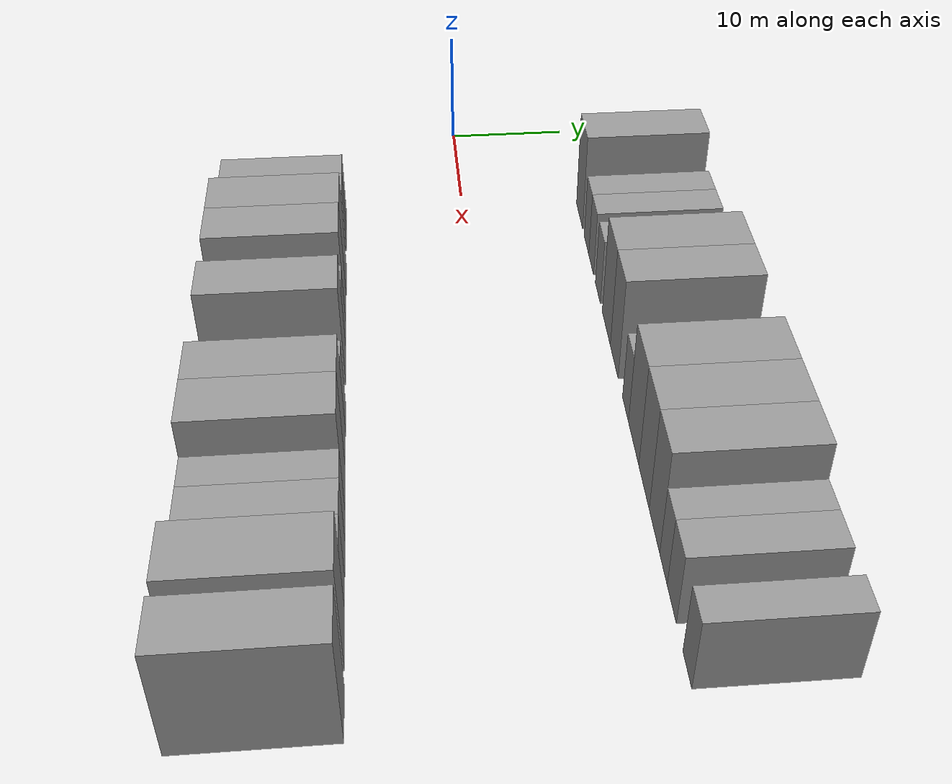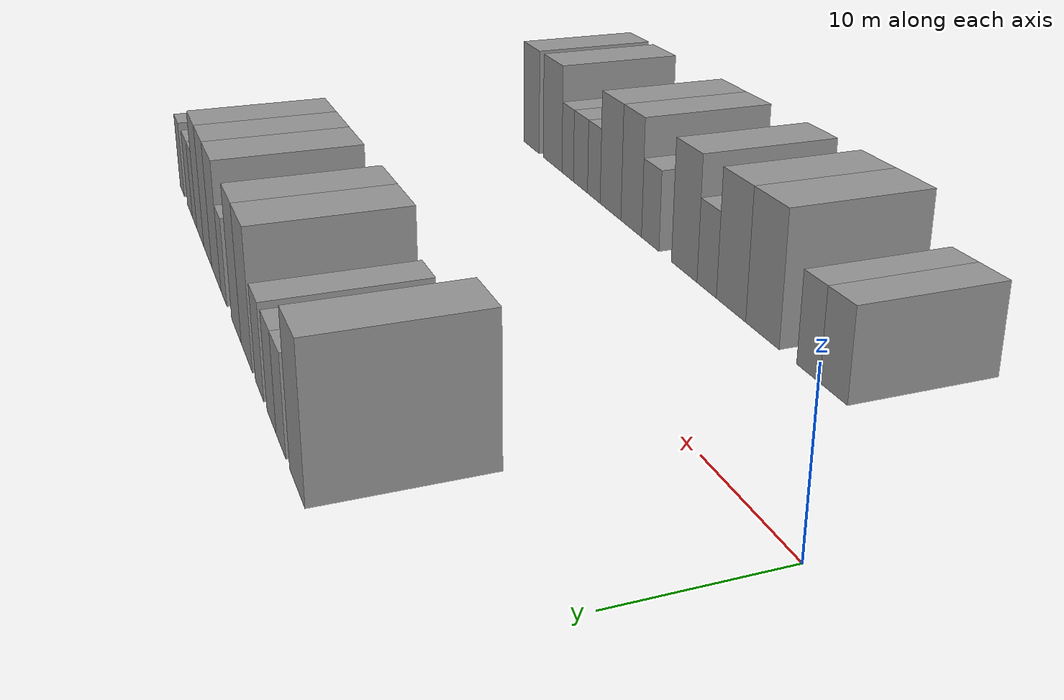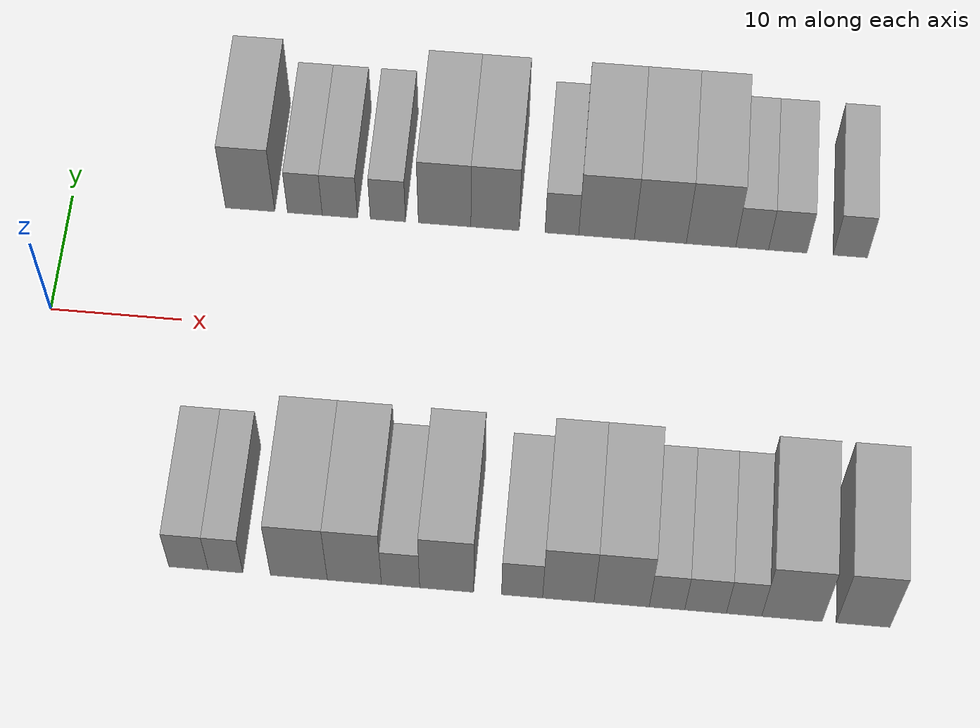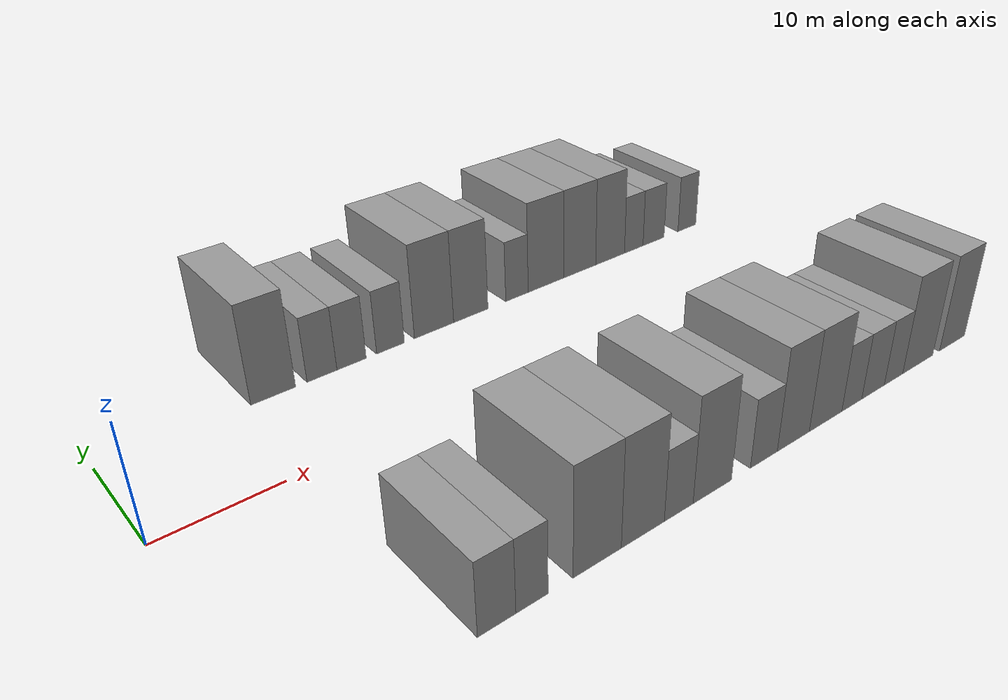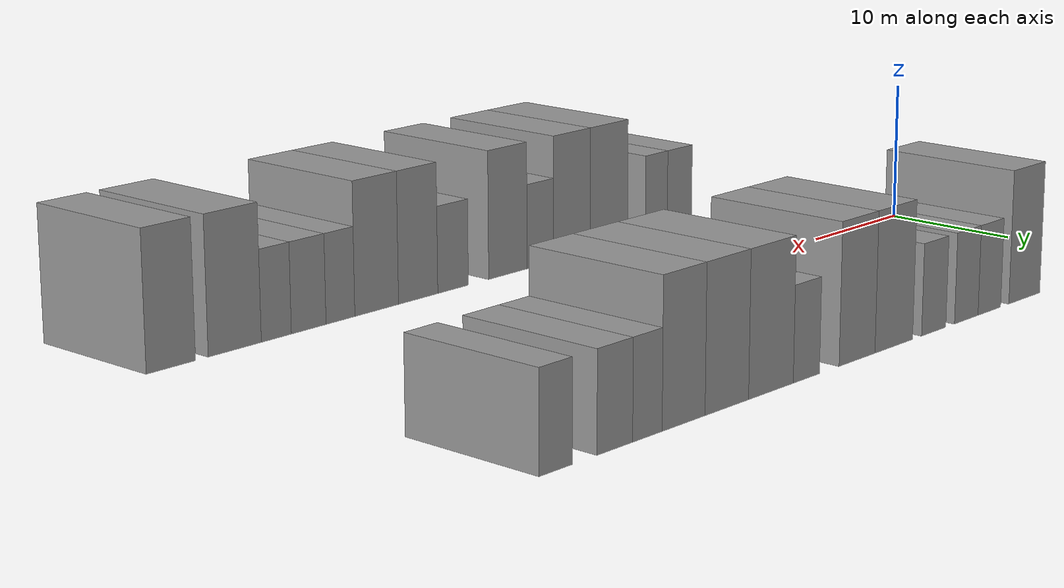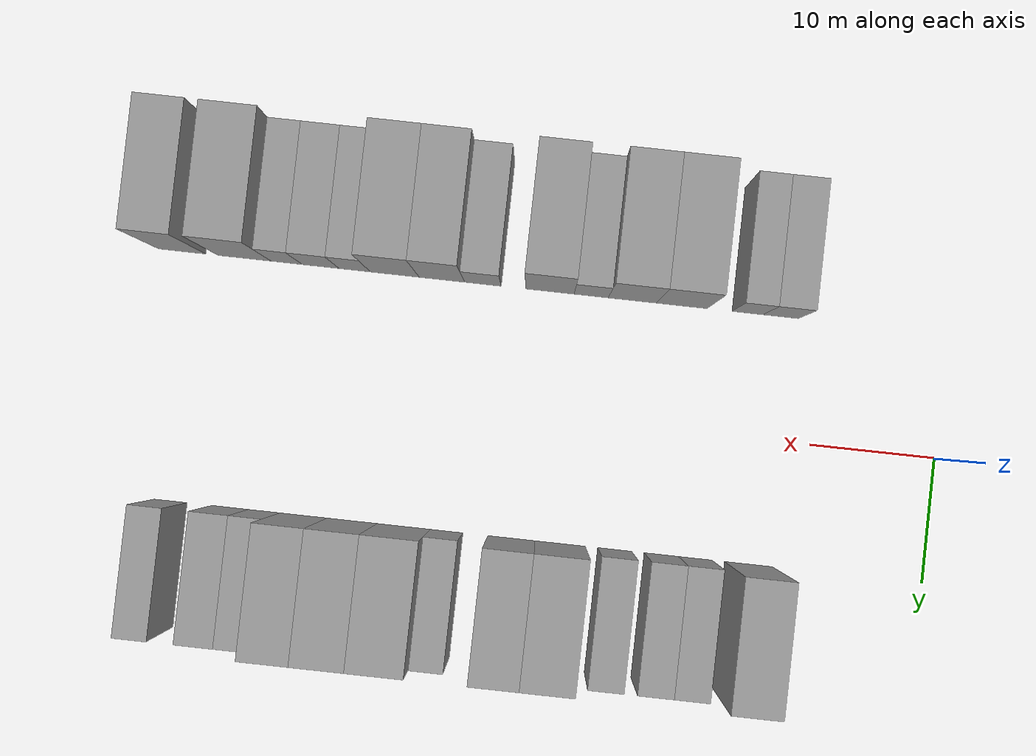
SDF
<sdf version="1.6">
 <world name="default">
  <model name="building_1">
   <static>1</static>
   <pose>13.9226 15.0000 0 0.000000 0.000000 1.570796</pose>
   <link name="link">
    <pose>0 0 4.50 0 0 0</pose>
    <collision name="collision"><geometry><box><size>10.0000 3.8453 9.0000</size></box></geometry></collision>
    <visual name="visual">
     <cast_shadows>0</cast_shadows>
     <geometry><box><size>10.0000 3.8453 9.0000</size></box></geometry>
     <material>
      <script>
       <uri>model://grey_wall/materials/scripts</uri>
       <uri>model://grey_wall/materials/textures</uri>
       <name>vrc/grey_wall</name>
      </script>
     </material>
    </visual>
   </link>
  </model>
  <model name="building_2">
   <static>1</static>
   <pose>18.2007 15.0000 0 0.000000 0.000000 1.570796</pose>
   <link name="link">
    <pose>0 0 3.00 0 0 0</pose>
    <collision name="collision"><geometry><box><size>10.0000 2.7110 6.0000</size></box></geometry></collision>
    <visual name="visual">
     <cast_shadows>0</cast_shadows>
     <geometry><box><size>10.0000 2.7110 6.0000</size></box></geometry>
     <material>
      <script>
       <uri>model://grey_wall/materials/scripts</uri>
       <uri>model://grey_wall/materials/textures</uri>
       <name>vrc/grey_wall</name>
      </script>
     </material>
    </visual>
   </link>
  </model>
  <model name="building_3">
   <static>1</static>
   <pose>20.9321 15.0000 0 0.000000 0.000000 1.570796</pose>
   <link name="link">
    <pose>0 0 3.00 0 0 0</pose>
    <collision name="collision"><geometry><box><size>10.0000 2.7518 6.0000</size></box></geometry></collision>
    <visual name="visual">
     <cast_shadows>0</cast_shadows>
     <geometry><box><size>10.0000 2.7518 6.0000</size></box></geometry>
     <material>
      <script>
       <uri>model://grey_wall/materials/scripts</uri>
       <uri>model://grey_wall/materials/textures</uri>
       <name>vrc/grey_wall</name>
      </script>
     </material>
    </visual>
   </link>
  </model>
  <model name="building_4">
   <static>1</static>
   <pose>24.6770 15.0000 0 0.000000 0.000000 1.570796</pose>
   <link name="link">
    <pose>0 0 3.00 0 0 0</pose>
    <collision name="collision"><geometry><box><size>10.0000 2.7379 6.0000</size></box></geometry></collision>
    <visual name="visual">
     <cast_shadows>0</cast_shadows>
     <geometry><box><size>10.0000 2.7379 6.0000</size></box></geometry>
     <material>
      <script>
       <uri>model://grey_wall/materials/scripts</uri>
       <uri>model://grey_wall/materials/textures</uri>
       <name>vrc/grey_wall</name>
      </script>
     </material>
    </visual>
   </link>
  </model>
  <model name="building_5">
   <static>1</static>
   <pose>29.0868 15.0000 0 0.000000 0.000000 1.570796</pose>
   <link name="link">
    <pose>0 0 4.50 0 0 0</pose>
    <collision name="collision"><geometry><box><size>10.0000 4.0817 9.0000</size></box></geometry></collision>
    <visual name="visual">
     <cast_shadows>0</cast_shadows>
     <geometry><box><size>10.0000 4.0817 9.0000</size></box></geometry>
     <material>
      <script>
       <uri>model://grey_wall/materials/scripts</uri>
       <uri>model://grey_wall/materials/textures</uri>
       <name>vrc/grey_wall</name>
      </script>
     </material>
    </visual>
   </link>
  </model>
  <model name="building_6">
   <static>1</static>
   <pose>33.0017 15.0000 0 0.000000 0.000000 1.570796</pose>
   <link name="link">
    <pose>0 0 4.50 0 0 0</pose>
    <collision name="collision"><geometry><box><size>10.0000 3.7479 9.0000</size></box></geometry></collision>
    <visual name="visual">
     <cast_shadows>0</cast_shadows>
     <geometry><box><size>10.0000 3.7479 9.0000</size></box></geometry>
     <material>
      <script>
       <uri>model://grey_wall/materials/scripts</uri>
       <uri>model://grey_wall/materials/textures</uri>
       <name>vrc/grey_wall</name>
      </script>
     </material>
    </visual>
   </link>
  </model>
  <model name="building_7">
   <static>1</static>
   <pose>38.1766 15.0000 0 0.000000 0.000000 1.570796</pose>
   <link name="link">
    <pose>0 0 3.00 0 0 0</pose>
    <collision name="collision"><geometry><box><size>10.0000 2.6020 6.0000</size></box></geometry></collision>
    <visual name="visual">
     <cast_shadows>0</cast_shadows>
     <geometry><box><size>10.0000 2.6020 6.0000</size></box></geometry>
     <material>
      <script>
       <uri>model://grey_wall/materials/scripts</uri>
       <uri>model://grey_wall/materials/textures</uri>
       <name>vrc/grey_wall</name>
      </script>
     </material>
    </visual>
   </link>
  </model>
  <model name="building_8">
   <static>1</static>
   <pose>41.6271 15.0000 0 0.000000 0.000000 1.570796</pose>
   <link name="link">
    <pose>0 0 4.50 0 0 0</pose>
    <collision name="collision"><geometry><box><size>10.0000 4.2989 9.0000</size></box></geometry></collision>
    <visual name="visual">
     <cast_shadows>0</cast_shadows>
     <geometry><box><size>10.0000 4.2989 9.0000</size></box></geometry>
     <material>
      <script>
       <uri>model://grey_wall/materials/scripts</uri>
       <uri>model://grey_wall/materials/textures</uri>
       <name>vrc/grey_wall</name>
      </script>
     </material>
    </visual>
   </link>
  </model>
  <model name="building_9">
   <static>1</static>
   <pose>45.7848 15.0000 0 0.000000 0.000000 1.570796</pose>
   <link name="link">
    <pose>0 0 4.50 0 0 0</pose>
    <collision name="collision"><geometry><box><size>10.0000 4.0166 9.0000</size></box></geometry></collision>
    <visual name="visual">
     <cast_shadows>0</cast_shadows>
     <geometry><box><size>10.0000 4.0166 9.0000</size></box></geometry>
     <material>
      <script>
       <uri>model://grey_wall/materials/scripts</uri>
       <uri>model://grey_wall/materials/textures</uri>
       <name>vrc/grey_wall</name>
      </script>
     </material>
    </visual>
   </link>
  </model>
  <model name="building_10">
   <static>1</static>
   <pose>49.6950 15.0000 0 0.000000 0.000000 1.570796</pose>
   <link name="link">
    <pose>0 0 4.50 0 0 0</pose>
    <collision name="collision"><geometry><box><size>10.0000 3.8036 9.0000</size></box></geometry></collision>
    <visual name="visual">
     <cast_shadows>0</cast_shadows>
     <geometry><box><size>10.0000 3.8036 9.0000</size></box></geometry>
     <material>
      <script>
       <uri>model://grey_wall/materials/scripts</uri>
       <uri>model://grey_wall/materials/textures</uri>
       <name>vrc/grey_wall</name>
      </script>
     </material>
    </visual>
   </link>
  </model>
  <model name="building_11">
   <static>1</static>
   <pose>52.8609 15.0000 0 0.000000 0.000000 1.570796</pose>
   <link name="link">
    <pose>0 0 3.00 0 0 0</pose>
    <collision name="collision"><geometry><box><size>10.0000 2.5283 6.0000</size></box></geometry></collision>
    <visual name="visual">
     <cast_shadows>0</cast_shadows>
     <geometry><box><size>10.0000 2.5283 6.0000</size></box></geometry>
     <material>
      <script>
       <uri>model://grey_wall/materials/scripts</uri>
       <uri>model://grey_wall/materials/textures</uri>
       <name>vrc/grey_wall</name>
      </script>
     </material>
    </visual>
   </link>
  </model>
  <model name="building_12">
   <static>1</static>
   <pose>55.6068 15.0000 0 0.000000 0.000000 1.570796</pose>
   <link name="link">
    <pose>0 0 3.00 0 0 0</pose>
    <collision name="collision"><geometry><box><size>10.0000 2.9635 6.0000</size></box></geometry></collision>
    <visual name="visual">
     <cast_shadows>0</cast_shadows>
     <geometry><box><size>10.0000 2.9635 6.0000</size></box></geometry>
     <material>
      <script>
       <uri>model://grey_wall/materials/scripts</uri>
       <uri>model://grey_wall/materials/textures</uri>
       <name>vrc/grey_wall</name>
      </script>
     </material>
    </visual>
   </link>
  </model>
  <model name="building_13">
   <static>1</static>
   <pose>60.4055 15.0000 0 0.000000 0.000000 1.570796</pose>
   <link name="link">
    <pose>0 0 3.00 0 0 0</pose>
    <collision name="collision"><geometry><box><size>10.0000 2.6340 6.0000</size></box></geometry></collision>
    <visual name="visual">
     <cast_shadows>0</cast_shadows>
     <geometry><box><size>10.0000 2.6340 6.0000</size></box></geometry>
     <material>
      <script>
       <uri>model://grey_wall/materials/scripts</uri>
       <uri>model://grey_wall/materials/textures</uri>
       <name>vrc/grey_wall</name>
      </script>
     </material>
    </visual>
   </link>
  </model>
  <model name="building_57">
   <static>1</static>
   <pose>13.4262 -15.0000 0 0.000000 0.000000 1.570796</pose>
   <link name="link">
    <pose>0 0 3.00 0 0 0</pose>
    <collision name="collision"><geometry><box><size>10.0000 2.8524 6.0000</size></box></geometry></collision>
    <visual name="visual">
     <cast_shadows>0</cast_shadows>
     <geometry><box><size>10.0000 2.8524 6.0000</size></box></geometry>
     <material>
      <script>
       <uri>model://grey_wall/materials/scripts</uri>
       <uri>model://grey_wall/materials/textures</uri>
       <name>vrc/grey_wall</name>
      </script>
     </material>
    </visual>
   </link>
  </model>
  <model name="building_58">
   <static>1</static>
   <pose>16.1058 -15.0000 0 0.000000 0.000000 1.570796</pose>
   <link name="link">
    <pose>0 0 3.00 0 0 0</pose>
    <collision name="collision"><geometry><box><size>10.0000 2.5069 6.0000</size></box></geometry></collision>
    <visual name="visual">
     <cast_shadows>0</cast_shadows>
     <geometry><box><size>10.0000 2.5069 6.0000</size></box></geometry>
     <material>
      <script>
       <uri>model://grey_wall/materials/scripts</uri>
       <uri>model://grey_wall/materials/textures</uri>
       <name>vrc/grey_wall</name>
      </script>
     </material>
    </visual>
   </link>
  </model>
  <model name="building_59">
   <static>1</static>
   <pose>21.4099 -15.0000 0 0.000000 0.000000 1.570796</pose>
   <link name="link">
    <pose>0 0 4.50 0 0 0</pose>
    <collision name="collision"><geometry><box><size>10.0000 4.1012 9.0000</size></box></geometry></collision>
    <visual name="visual">
     <cast_shadows>0</cast_shadows>
     <geometry><box><size>10.0000 4.1012 9.0000</size></box></geometry>
     <material>
      <script>
       <uri>model://grey_wall/materials/scripts</uri>
       <uri>model://grey_wall/materials/textures</uri>
       <name>vrc/grey_wall</name>
      </script>
     </material>
    </visual>
   </link>
  </model>
  <model name="building_60">
   <static>1</static>
   <pose>25.4114 -15.0000 0 0.000000 0.000000 1.570796</pose>
   <link name="link">
    <pose>0 0 4.50 0 0 0</pose>
    <collision name="collision"><geometry><box><size>10.0000 3.9020 9.0000</size></box></geometry></collision>
    <visual name="visual">
     <cast_shadows>0</cast_shadows>
     <geometry><box><size>10.0000 3.9020 9.0000</size></box></geometry>
     <material>
      <script>
       <uri>model://grey_wall/materials/scripts</uri>
       <uri>model://grey_wall/materials/textures</uri>
       <name>vrc/grey_wall</name>
      </script>
     </material>
    </visual>
   </link>
  </model>
  <model name="building_61">
   <static>1</static>
   <pose>28.7406 -15.0000 0 0.000000 0.000000 1.570796</pose>
   <link name="link">
    <pose>0 0 3.00 0 0 0</pose>
    <collision name="collision"><geometry><box><size>10.0000 2.7563 6.0000</size></box></geometry></collision>
    <visual name="visual">
     <cast_shadows>0</cast_shadows>
     <geometry><box><size>10.0000 2.7563 6.0000</size></box></geometry>
     <material>
      <script>
       <uri>model://grey_wall/materials/scripts</uri>
       <uri>model://grey_wall/materials/textures</uri>
       <name>vrc/grey_wall</name>
      </script>
     </material>
    </visual>
   </link>
  </model>
  <model name="building_62">
   <static>1</static>
   <pose>32.0567 -15.0000 0 0.000000 0.000000 1.570796</pose>
   <link name="link">
    <pose>0 0 4.50 0 0 0</pose>
    <collision name="collision"><geometry><box><size>10.0000 3.8760 9.0000</size></box></geometry></collision>
    <visual name="visual">
     <cast_shadows>0</cast_shadows>
     <geometry><box><size>10.0000 3.8760 9.0000</size></box></geometry>
     <material>
      <script>
       <uri>model://grey_wall/materials/scripts</uri>
       <uri>model://grey_wall/materials/textures</uri>
       <name>vrc/grey_wall</name>
      </script>
     </material>
    </visual>
   </link>
  </model>
  <model name="building_63">
   <static>1</static>
   <pose>37.4647 -15.0000 0 0.000000 0.000000 1.570796</pose>
   <link name="link">
    <pose>0 0 3.00 0 0 0</pose>
    <collision name="collision"><geometry><box><size>10.0000 2.9399 6.0000</size></box></geometry></collision>
    <visual name="visual">
     <cast_shadows>0</cast_shadows>
     <geometry><box><size>10.0000 2.9399 6.0000</size></box></geometry>
     <material>
      <script>
       <uri>model://grey_wall/materials/scripts</uri>
       <uri>model://grey_wall/materials/textures</uri>
       <name>vrc/grey_wall</name>
      </script>
     </material>
    </visual>
   </link>
  </model>
  <model name="building_64">
   <static>1</static>
   <pose>40.7712 -15.0000 0 0.000000 0.000000 1.570796</pose>
   <link name="link">
    <pose>0 0 4.50 0 0 0</pose>
    <collision name="collision"><geometry><box><size>10.0000 3.6730 9.0000</size></box></geometry></collision>
    <visual name="visual">
     <cast_shadows>0</cast_shadows>
     <geometry><box><size>10.0000 3.6730 9.0000</size></box></geometry>
     <material>
      <script>
       <uri>model://grey_wall/materials/scripts</uri>
       <uri>model://grey_wall/materials/textures</uri>
       <name>vrc/grey_wall</name>
      </script>
     </material>
    </visual>
   </link>
  </model>
  <model name="building_65">
   <static>1</static>
   <pose>44.5831 -15.0000 0 0.000000 0.000000 1.570796</pose>
   <link name="link">
    <pose>0 0 4.50 0 0 0</pose>
    <collision name="collision"><geometry><box><size>10.0000 3.9509 9.0000</size></box></geometry></collision>
    <visual name="visual">
     <cast_shadows>0</cast_shadows>
     <geometry><box><size>10.0000 3.9509 9.0000</size></box></geometry>
     <material>
      <script>
       <uri>model://grey_wall/materials/scripts</uri>
       <uri>model://grey_wall/materials/textures</uri>
       <name>vrc/grey_wall</name>
      </script>
     </material>
    </visual>
   </link>
  </model>
  <model name="building_66">
   <static>1</static>
   <pose>47.8256 -15.0000 0 0.000000 0.000000 1.570796</pose>
   <link name="link">
    <pose>0 0 3.00 0 0 0</pose>
    <collision name="collision"><geometry><box><size>10.0000 2.5341 6.0000</size></box></geometry></collision>
    <visual name="visual">
     <cast_shadows>0</cast_shadows>
     <geometry><box><size>10.0000 2.5341 6.0000</size></box></geometry>
     <material>
      <script>
       <uri>model://grey_wall/materials/scripts</uri>
       <uri>model://grey_wall/materials/textures</uri>
       <name>vrc/grey_wall</name>
      </script>
     </material>
    </visual>
   </link>
  </model>
  <model name="building_67">
   <static>1</static>
   <pose>50.5772 -15.0000 0 0.000000 0.000000 1.570796</pose>
   <link name="link">
    <pose>0 0 3.00 0 0 0</pose>
    <collision name="collision"><geometry><box><size>10.0000 2.9689 6.0000</size></box></geometry></collision>
    <visual name="visual">
     <cast_shadows>0</cast_shadows>
     <geometry><box><size>10.0000 2.9689 6.0000</size></box></geometry>
     <material>
      <script>
       <uri>model://grey_wall/materials/scripts</uri>
       <uri>model://grey_wall/materials/textures</uri>
       <name>vrc/grey_wall</name>
      </script>
     </material>
    </visual>
   </link>
  </model>
  <model name="building_68">
   <static>1</static>
   <pose>53.3177 -15.0000 0 0.000000 0.000000 1.570796</pose>
   <link name="link">
    <pose>0 0 3.00 0 0 0</pose>
    <collision name="collision"><geometry><box><size>10.0000 2.5122 6.0000</size></box></geometry></collision>
    <visual name="visual">
     <cast_shadows>0</cast_shadows>
     <geometry><box><size>10.0000 2.5122 6.0000</size></box></geometry>
     <material>
      <script>
       <uri>model://grey_wall/materials/scripts</uri>
       <uri>model://grey_wall/materials/textures</uri>
       <name>vrc/grey_wall</name>
      </script>
     </material>
    </visual>
   </link>
  </model>
  <model name="building_69">
   <static>1</static>
   <pose>56.7246 -15.0000 0 0.000000 0.000000 1.570796</pose>
   <link name="link">
    <pose>0 0 4.50 0 0 0</pose>
    <collision name="collision"><geometry><box><size>10.0000 4.3016 9.0000</size></box></geometry></collision>
    <visual name="visual">
     <cast_shadows>0</cast_shadows>
     <geometry><box><size>10.0000 4.3016 9.0000</size></box></geometry>
     <material>
      <script>
       <uri>model://grey_wall/materials/scripts</uri>
       <uri>model://grey_wall/materials/textures</uri>
       <name>vrc/grey_wall</name>
      </script>
     </material>
    </visual>
   </link>
  </model>
  <model name="building_70">
   <static>1</static>
   <pose>61.7794 -15.0000 0 0.000000 0.000000 1.570796</pose>
   <link name="link">
    <pose>0 0 4.50 0 0 0</pose>
    <collision name="collision"><geometry><box><size>10.0000 3.8079 9.0000</size></box></geometry></collision>
    <visual name="visual">
     <cast_shadows>0</cast_shadows>
     <geometry><box><size>10.0000 3.8079 9.0000</size></box></geometry>
     <material>
      <script>
       <uri>model://grey_wall/materials/scripts</uri>
       <uri>model://grey_wall/materials/textures</uri>
       <name>vrc/grey_wall</name>
      </script>
     </material>
    </visual>
   </link>
  </model>
 </world>
</sdf>
